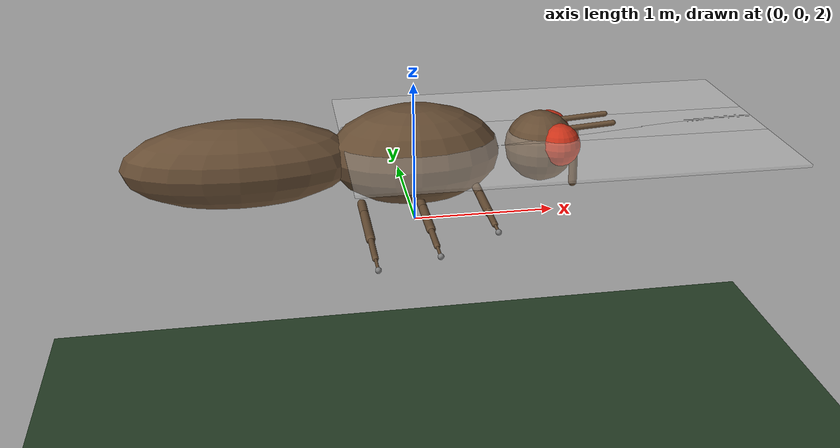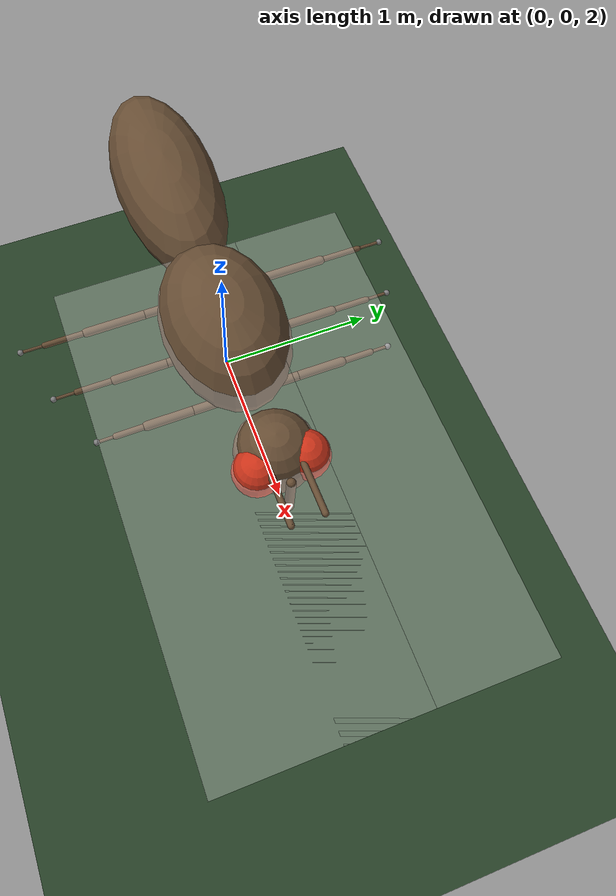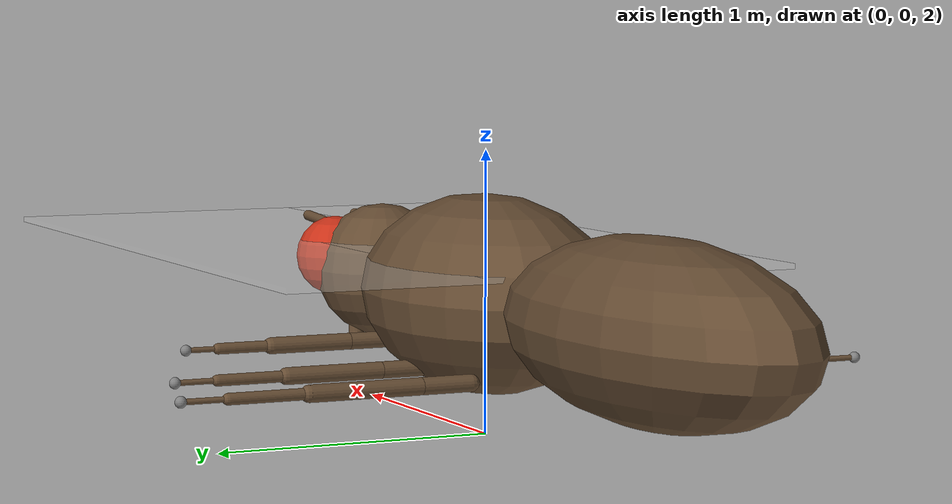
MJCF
<mujoco model="drosophila_melanogaster">
  <compiler angle="radian" autolimits="true"/>

  <!-- Simulation options -->
  <option timestep="0.001" gravity="0 0 -9.81" integrator="RK4">
    <flag contact="enable" warmstart="enable"/>
  </option>

  <!-- Default values -->
  <default>
    <joint armature="0.001" damping="0.1" limited="true"/>
    <geom contype="1" conaffinity="1" friction="0.8 0.02 0.01" solimp="0.9 0.95 0.001"/>
    <motor ctrllimited="true"/>
  </default>

  <!-- Assets for visualization -->
  <asset>
    <texture name="grid" type="2d" builtin="checker" rgb1="0.2 0.3 0.2" rgb2="0.1 0.2 0.1" width="512" height="512"/>
    <material name="grid_mat" texture="grid" texrepeat="8 8" reflectance="0.1"/>
    <material name="exo_mat" rgba="0.4 0.3 0.2 1"/>
    <material name="wing_mat" rgba="0.9 0.9 0.9 0.3"/>
    <material name="eye_mat" rgba="0.8 0.2 0.1 1"/>
  </asset>

  <worldbody>
    <!-- Ground plane -->
    <geom name="floor" type="plane" size="10 10 0.1" material="grid_mat"/>

    <!-- Drosophila body (scaled 1000x) -->
    <body name="thorax" pos="0 0 2.5">
      <!-- Free joint for 6-DOF body motion -->
      <freejoint name="root"/>

      <!-- Thorax: main body mass ~0.5kg scaled -->
      <inertial pos="0 0 0" mass="0.5" diaginertia="0.001 0.002 0.0015"/>
      <geom name="thorax" type="ellipsoid" size="0.6 0.4 0.35" material="exo_mat"/>

      <!-- ========== HEAD ========== -->
      <body name="head" pos="0.9 0 0">
        <joint name="neck_pitch" type="hinge" axis="0 1 0" range="-0.5 0.5"/>
        <inertial pos="0 0 0" mass="0.05" diaginertia="0.0002 0.0002 0.00015"/>
        <geom name="head" type="sphere" size="0.25" material="exo_mat"/>

        <!-- Compound eyes -->
        <geom name="left_eye" type="sphere" size="0.15" pos="0.1 0.15 0.05" material="eye_mat"/>
        <geom name="right_eye" type="sphere" size="0.15" pos="0.1 -0.15 0.05" material="eye_mat"/>

        <!-- Antennae -->
        <body name="left_antenna" pos="0.2 0.1 0.15">
          <joint name="antenna_L_yaw" type="hinge" axis="0 0 1" range="-1.0 1.0"/>
          <inertial pos="0 0 0.15" mass="0.001" diaginertia="1e-8 1e-8 1e-8"/>
          <geom name="antenna_L" type="capsule" size="0.02 0.3" euler="0 1.5 0" material="exo_mat"/>
        </body>
        <body name="right_antenna" pos="0.2 -0.1 0.15">
          <joint name="antenna_R_yaw" type="hinge" axis="0 0 1" range="-1.0 1.0"/>
          <inertial pos="0 0 0.15" mass="0.001" diaginertia="1e-8 1e-8 1e-8"/>
          <geom name="antenna_R" type="capsule" size="0.02 0.3" euler="0 1.5 0" material="exo_mat"/>
        </body>

        <!-- Proboscis -->
        <body name="proboscis" pos="0.25 0 -0.1">
          <joint name="proboscis_extend" type="slide" axis="1 0 0" range="0 0.5"/>
          <inertial pos="0.1 0 0" mass="0.001" diaginertia="1e-8 1e-8 1e-8"/>
          <geom name="proboscis" type="capsule" size="0.03 0.2" material="exo_mat"/>
        </body>
      </body>

      <!-- ========== WINGS ========== -->
      <body name="left_wing" pos="0 0.35 0.1">
        <joint name="wing_L" type="hinge" axis="0 0.03 1" range="-2.5 2.5" damping="0.01"/>
        <inertial pos="1.0 0 0" mass="0.01" diaginertia="0.001 1e-6 0.001"/>
        <geom name="wing_L" type="box" size="1.5 0.6 0.01" pos="1.0 0 0" material="wing_mat"/>
      </body>
      <body name="right_wing" pos="0 -0.35 0.1">
        <joint name="wing_R" type="hinge" axis="0 -0.03 1" range="-2.5 2.5" damping="0.01"/>
        <inertial pos="1.0 0 0" mass="0.01" diaginertia="0.001 1e-6 0.001"/>
        <geom name="wing_R" type="box" size="1.5 0.6 0.01" pos="1.0 0 0" material="wing_mat"/>
      </body>

      <!-- ========== LEGS ========== -->
      <!-- LEFT FRONT LEG (L1) -->
      <body name="leg_L1_coxa" pos="0.4 0.2 -0.2">
        <joint name="C1_L_yaw" type="hinge" axis="0 0 1" range="-1.2 1.2"/>
        <joint name="C1_L_pitch" type="hinge" axis="0 1 0" range="-0.5 1.0"/>
        <inertial pos="0 0.1 0" mass="0.01" diaginertia="1e-6 1e-6 1e-6"/>
        <geom name="C1_L" type="capsule" size="0.03 0.08" fromto="0 0 0 0 0.15 0" material="exo_mat"/>

        <body name="leg_L1_femur" pos="0 0.15 0">
          <joint name="F1_L_pitch" type="hinge" axis="0 1 0" range="-0.3 2.0"/>
          <inertial pos="0 0.15 0" mass="0.015" diaginertia="4e-6 1e-7 4e-6"/>
          <geom name="F1_L" type="capsule" size="0.03 0.18" fromto="0 0 0 0 0.3 0" material="exo_mat"/>

          <body name="leg_L1_tibia" pos="0 0.3 0">
            <joint name="T1_L_pitch" type="hinge" axis="0 1 0" range="-2.0 0.3"/>
            <inertial pos="0 0.1 0" mass="0.01" diaginertia="2e-6 1e-7 2e-6"/>
            <geom name="T1_L" type="capsule" size="0.02 0.15" fromto="0 0 0 0 0.2 0" material="exo_mat"/>

            <body name="leg_L1_tarsus" pos="0 0.2 0">
              <joint name="Ta1_L_pitch" type="hinge" axis="0 1 0" range="-0.5 1.0"/>
              <inertial pos="0 0.06 0" mass="0.005" diaginertia="1e-6 1e-7 1e-6"/>
              <geom name="Ta1_L" type="capsule" size="0.01 0.1" fromto="0 0 0 0 0.12 0" material="exo_mat"/>
              <site name="touch_L1_site" pos="0 0.12 0" size="0.02"/>
            </body>
          </body>
        </body>
      </body>

      <!-- LEFT MIDDLE LEG (L2) -->
      <body name="leg_L2_coxa" pos="0 0.25 -0.25">
        <joint name="C2_L_yaw" type="hinge" axis="0 0 1" range="-1.2 1.2"/>
        <joint name="C2_L_pitch" type="hinge" axis="0 1 0" range="-0.5 1.0"/>
        <inertial pos="0 0.1 0" mass="0.01" diaginertia="1e-6 1e-6 1e-6"/>
        <geom name="C2_L" type="capsule" size="0.03 0.08" fromto="0 0 0 0 0.15 0" material="exo_mat"/>

        <body name="leg_L2_femur" pos="0 0.15 0">
          <joint name="F2_L_pitch" type="hinge" axis="0 1 0" range="-0.3 2.0"/>
          <inertial pos="0 0.18 0" mass="0.018" diaginertia="5e-6 1e-7 5e-6"/>
          <geom name="F2_L" type="capsule" size="0.03 0.22" fromto="0 0 0 0 0.35 0" material="exo_mat"/>

          <body name="leg_L2_tibia" pos="0 0.35 0">
            <joint name="T2_L_pitch" type="hinge" axis="0 1 0" range="-2.0 0.3"/>
            <inertial pos="0 0.12 0" mass="0.012" diaginertia="3e-6 1e-7 3e-6"/>
            <geom name="T2_L" type="capsule" size="0.02 0.18" fromto="0 0 0 0 0.25 0" material="exo_mat"/>

            <body name="leg_L2_tarsus" pos="0 0.25 0">
              <joint name="Ta2_L_pitch" type="hinge" axis="0 1 0" range="-0.5 1.0"/>
              <inertial pos="0 0.075 0" mass="0.006" diaginertia="1e-6 1e-7 1e-6"/>
              <geom name="Ta2_L" type="capsule" size="0.01 0.12" fromto="0 0 0 0 0.15 0" material="exo_mat"/>
              <site name="touch_L2_site" pos="0 0.15 0" size="0.02"/>
            </body>
          </body>
        </body>
      </body>

      <!-- LEFT HIND LEG (L3) -->
      <body name="leg_L3_coxa" pos="-0.4 0.25 -0.25">
        <joint name="C3_L_yaw" type="hinge" axis="0 0 1" range="-1.2 1.2"/>
        <joint name="C3_L_pitch" type="hinge" axis="0 1 0" range="-0.5 1.0"/>
        <inertial pos="0 0.1 0" mass="0.012" diaginertia="1e-6 1e-6 1e-6"/>
        <geom name="C3_L" type="capsule" size="0.03 0.1" fromto="0 0 0 0 0.18 0" material="exo_mat"/>

        <body name="leg_L3_femur" pos="0 0.18 0">
          <joint name="F3_L_pitch" type="hinge" axis="0 1 0" range="-0.3 2.0"/>
          <inertial pos="0 0.2 0" mass="0.02" diaginertia="6e-6 1e-7 6e-6"/>
          <geom name="F3_L" type="capsule" size="0.03 0.25" fromto="0 0 0 0 0.4 0" material="exo_mat"/>

          <body name="leg_L3_tibia" pos="0 0.4 0">
            <joint name="T3_L_pitch" type="hinge" axis="0 1 0" range="-2.0 0.3"/>
            <inertial pos="0 0.14 0" mass="0.014" diaginertia="4e-6 1e-7 4e-6"/>
            <geom name="T3_L" type="capsule" size="0.02 0.2" fromto="0 0 0 0 0.28 0" material="exo_mat"/>

            <body name="leg_L3_tarsus" pos="0 0.28 0">
              <joint name="Ta3_L_pitch" type="hinge" axis="0 1 0" range="-0.5 1.0"/>
              <inertial pos="0 0.08 0" mass="0.007" diaginertia="2e-6 1e-7 2e-6"/>
              <geom name="Ta3_L" type="capsule" size="0.01 0.14" fromto="0 0 0 0 0.16 0" material="exo_mat"/>
              <site name="touch_L3_site" pos="0 0.16 0" size="0.02"/>
            </body>
          </body>
        </body>
      </body>

      <!-- RIGHT FRONT LEG (R1) -->
      <body name="leg_R1_coxa" pos="0.4 -0.2 -0.2">
        <joint name="C1_R_yaw" type="hinge" axis="0 0 1" range="-1.2 1.2"/>
        <joint name="C1_R_pitch" type="hinge" axis="0 1 0" range="-0.5 1.0"/>
        <inertial pos="0 -0.1 0" mass="0.01" diaginertia="1e-6 1e-6 1e-6"/>
        <geom name="C1_R" type="capsule" size="0.03 0.08" fromto="0 0 0 0 -0.15 0" material="exo_mat"/>

        <body name="leg_R1_femur" pos="0 -0.15 0">
          <joint name="F1_R_pitch" type="hinge" axis="0 1 0" range="-0.3 2.0"/>
          <inertial pos="0 -0.15 0" mass="0.015" diaginertia="4e-6 1e-7 4e-6"/>
          <geom name="F1_R" type="capsule" size="0.03 0.18" fromto="0 0 0 0 -0.3 0" material="exo_mat"/>

          <body name="leg_R1_tibia" pos="0 -0.3 0">
            <joint name="T1_R_pitch" type="hinge" axis="0 1 0" range="-2.0 0.3"/>
            <inertial pos="0 -0.1 0" mass="0.01" diaginertia="2e-6 1e-7 2e-6"/>
            <geom name="T1_R" type="capsule" size="0.02 0.15" fromto="0 0 0 0 -0.2 0" material="exo_mat"/>

            <body name="leg_R1_tarsus" pos="0 -0.2 0">
              <joint name="Ta1_R_pitch" type="hinge" axis="0 1 0" range="-0.5 1.0"/>
              <inertial pos="0 -0.06 0" mass="0.005" diaginertia="1e-6 1e-7 1e-6"/>
              <geom name="Ta1_R" type="capsule" size="0.01 0.1" fromto="0 0 0 0 -0.12 0" material="exo_mat"/>
              <site name="touch_R1_site" pos="0 -0.12 0" size="0.02"/>
            </body>
          </body>
        </body>
      </body>

      <!-- RIGHT MIDDLE LEG (R2) -->
      <body name="leg_R2_coxa" pos="0 -0.25 -0.25">
        <joint name="C2_R_yaw" type="hinge" axis="0 0 1" range="-1.2 1.2"/>
        <joint name="C2_R_pitch" type="hinge" axis="0 1 0" range="-0.5 1.0"/>
        <inertial pos="0 -0.1 0" mass="0.01" diaginertia="1e-6 1e-6 1e-6"/>
        <geom name="C2_R" type="capsule" size="0.03 0.08" fromto="0 0 0 0 -0.15 0" material="exo_mat"/>

        <body name="leg_R2_femur" pos="0 -0.15 0">
          <joint name="F2_R_pitch" type="hinge" axis="0 1 0" range="-0.3 2.0"/>
          <inertial pos="0 -0.18 0" mass="0.018" diaginertia="5e-6 1e-7 5e-6"/>
          <geom name="F2_R" type="capsule" size="0.03 0.22" fromto="0 0 0 0 -0.35 0" material="exo_mat"/>

          <body name="leg_R2_tibia" pos="0 -0.35 0">
            <joint name="T2_R_pitch" type="hinge" axis="0 1 0" range="-2.0 0.3"/>
            <inertial pos="0 -0.12 0" mass="0.012" diaginertia="3e-6 1e-7 3e-6"/>
            <geom name="T2_R" type="capsule" size="0.02 0.18" fromto="0 0 0 0 -0.25 0" material="exo_mat"/>

            <body name="leg_R2_tarsus" pos="0 -0.25 0">
              <joint name="Ta2_R_pitch" type="hinge" axis="0 1 0" range="-0.5 1.0"/>
              <inertial pos="0 -0.075 0" mass="0.006" diaginertia="1e-6 1e-7 1e-6"/>
              <geom name="Ta2_R" type="capsule" size="0.01 0.12" fromto="0 0 0 0 -0.15 0" material="exo_mat"/>
              <site name="touch_R2_site" pos="0 -0.15 0" size="0.02"/>
            </body>
          </body>
        </body>
      </body>

      <!-- RIGHT HIND LEG (R3) -->
      <body name="leg_R3_coxa" pos="-0.4 -0.25 -0.25">
        <joint name="C3_R_yaw" type="hinge" axis="0 0 1" range="-1.2 1.2"/>
        <joint name="C3_R_pitch" type="hinge" axis="0 1 0" range="-0.5 1.0"/>
        <inertial pos="0 -0.1 0" mass="0.012" diaginertia="1e-6 1e-6 1e-6"/>
        <geom name="C3_R" type="capsule" size="0.03 0.1" fromto="0 0 0 0 -0.18 0" material="exo_mat"/>

        <body name="leg_R3_femur" pos="0 -0.18 0">
          <joint name="F3_R_pitch" type="hinge" axis="0 1 0" range="-0.3 2.0"/>
          <inertial pos="0 -0.2 0" mass="0.02" diaginertia="6e-6 1e-7 6e-6"/>
          <geom name="F3_R" type="capsule" size="0.03 0.25" fromto="0 0 0 0 -0.4 0" material="exo_mat"/>

          <body name="leg_R3_tibia" pos="0 -0.4 0">
            <joint name="T3_R_pitch" type="hinge" axis="0 1 0" range="-2.0 0.3"/>
            <inertial pos="0 -0.14 0" mass="0.014" diaginertia="4e-6 1e-7 4e-6"/>
            <geom name="T3_R" type="capsule" size="0.02 0.2" fromto="0 0 0 0 -0.28 0" material="exo_mat"/>

            <body name="leg_R3_tarsus" pos="0 -0.28 0">
              <joint name="Ta3_R_pitch" type="hinge" axis="0 1 0" range="-0.5 1.0"/>
              <inertial pos="0 -0.08 0" mass="0.007" diaginertia="2e-6 1e-7 2e-6"/>
              <geom name="Ta3_R" type="capsule" size="0.01 0.14" fromto="0 0 0 0 -0.16 0" material="exo_mat"/>
              <site name="touch_R3_site" pos="0 -0.16 0" size="0.02"/>
            </body>
          </body>
        </body>
      </body>

      <!-- ========== ABDOMEN ========== -->
      <body name="abdomen" pos="-0.8 0 0">
        <joint name="abdomen_pitch" type="hinge" axis="0 1 0" range="-0.3 0.3"/>
        <inertial pos="-0.4 0 0" mass="0.3" diaginertia="0.0008 0.0005 0.0006"/>
        <geom name="abdomen" type="ellipsoid" size="0.8 0.35 0.3" pos="-0.4 0 0" material="exo_mat"/>
      </body>
    </body>
  </worldbody>

  <!-- ========== ACTUATORS ========== -->
  <actuator>
    <!-- Wing motors -->
    <motor name="wing_L_motor" joint="wing_L" ctrllimited="true" ctrlrange="-1 1" gear="0.1"/>
    <motor name="wing_R_motor" joint="wing_R" ctrllimited="true" ctrlrange="-1 1" gear="0.1"/>

    <!-- Left front leg (L1) -->
    <motor name="C1_L_motor" joint="C1_L_pitch" ctrllimited="true" ctrlrange="-1 1" gear="0.05"/>
    <motor name="F1_L_motor" joint="F1_L_pitch" ctrllimited="true" ctrlrange="-1 1" gear="0.05"/>
    <motor name="T1_L_motor" joint="T1_L_pitch" ctrllimited="true" ctrlrange="-1 1" gear="0.03"/>
    <motor name="Ta1_L_motor" joint="Ta1_L_pitch" ctrllimited="true" ctrlrange="-1 1" gear="0.02"/>

    <!-- Left middle leg (L2) -->
    <motor name="C2_L_motor" joint="C2_L_pitch" ctrllimited="true" ctrlrange="-1 1" gear="0.05"/>
    <motor name="F2_L_motor" joint="F2_L_pitch" ctrllimited="true" ctrlrange="-1 1" gear="0.05"/>
    <motor name="T2_L_motor" joint="T2_L_pitch" ctrllimited="true" ctrlrange="-1 1" gear="0.03"/>
    <motor name="Ta2_L_motor" joint="Ta2_L_pitch" ctrllimited="true" ctrlrange="-1 1" gear="0.02"/>

    <!-- Left hind leg (L3) -->
    <motor name="C3_L_motor" joint="C3_L_pitch" ctrllimited="true" ctrlrange="-1 1" gear="0.05"/>
    <motor name="F3_L_motor" joint="F3_L_pitch" ctrllimited="true" ctrlrange="-1 1" gear="0.05"/>
    <motor name="T3_L_motor" joint="T3_L_pitch" ctrllimited="true" ctrlrange="-1 1" gear="0.03"/>
    <motor name="Ta3_L_motor" joint="Ta3_L_pitch" ctrllimited="true" ctrlrange="-1 1" gear="0.02"/>

    <!-- Right front leg (R1) -->
    <motor name="C1_R_motor" joint="C1_R_pitch" ctrllimited="true" ctrlrange="-1 1" gear="0.05"/>
    <motor name="F1_R_motor" joint="F1_R_pitch" ctrllimited="true" ctrlrange="-1 1" gear="0.05"/>
    <motor name="T1_R_motor" joint="T1_R_pitch" ctrllimited="true" ctrlrange="-1 1" gear="0.03"/>
    <motor name="Ta1_R_motor" joint="Ta1_R_pitch" ctrllimited="true" ctrlrange="-1 1" gear="0.02"/>

    <!-- Right middle leg (R2) -->
    <motor name="C2_R_motor" joint="C2_R_pitch" ctrllimited="true" ctrlrange="-1 1" gear="0.05"/>
    <motor name="F2_R_motor" joint="F2_R_pitch" ctrllimited="true" ctrlrange="-1 1" gear="0.05"/>
    <motor name="T2_R_motor" joint="T2_R_pitch" ctrllimited="true" ctrlrange="-1 1" gear="0.03"/>
    <motor name="Ta2_R_motor" joint="Ta2_R_pitch" ctrllimited="true" ctrlrange="-1 1" gear="0.02"/>

    <!-- Right hind leg (R3) -->
    <motor name="C3_R_motor" joint="C3_R_pitch" ctrllimited="true" ctrlrange="-1 1" gear="0.05"/>
    <motor name="F3_R_motor" joint="F3_R_pitch" ctrllimited="true" ctrlrange="-1 1" gear="0.05"/>
    <motor name="T3_R_motor" joint="T3_R_pitch" ctrllimited="true" ctrlrange="-1 1" gear="0.03"/>
    <motor name="Ta3_R_motor" joint="Ta3_R_pitch" ctrllimited="true" ctrlrange="-1 1" gear="0.02"/>
  </actuator>

  <!-- ========== SENSORS ========== -->
  <sensor>
    <!-- Body position/velocity -->
    <framepos name="thorax_pos" objtype="body" objname="thorax"/>
    <framequat name="thorax_quat" objtype="body" objname="thorax"/>
    <framelinvel name="thorax_vel" objtype="body" objname="thorax"/>
    <frameangvel name="thorax_angvel" objtype="body" objname="thorax"/>

    <!-- Wing joint positions -->
    <jointpos name="wing_L_pos" joint="wing_L"/>
    <jointpos name="wing_R_pos" joint="wing_R"/>

    <!-- Leg joint positions (all legs) -->
    <jointpos name="C1_L_pos" joint="C1_L_pitch"/>
    <jointpos name="F1_L_pos" joint="F1_L_pitch"/>
    <jointpos name="T1_L_pos" joint="T1_L_pitch"/>
    <jointpos name="C2_L_pos" joint="C2_L_pitch"/>
    <jointpos name="F2_L_pos" joint="F2_L_pitch"/>
    <jointpos name="T2_L_pos" joint="T2_L_pitch"/>
    <jointpos name="C3_L_pos" joint="C3_L_pitch"/>
    <jointpos name="F3_L_pos" joint="F3_L_pitch"/>
    <jointpos name="T3_L_pos" joint="T3_L_pitch"/>

    <jointpos name="C1_R_pos" joint="C1_R_pitch"/>
    <jointpos name="F1_R_pos" joint="F1_R_pitch"/>
    <jointpos name="T1_R_pos" joint="T1_R_pitch"/>
    <jointpos name="C2_R_pos" joint="C2_R_pitch"/>
    <jointpos name="F2_R_pos" joint="F2_R_pitch"/>
    <jointpos name="T2_R_pos" joint="T2_R_pitch"/>
    <jointpos name="C3_R_pos" joint="C3_R_pitch"/>
    <jointpos name="F3_R_pos" joint="F3_R_pitch"/>
    <jointpos name="T3_R_pos" joint="T3_R_pitch"/>

    <!-- Tarsus joint positions -->
    <jointpos name="Ta1_L_pos" joint="Ta1_L_pitch"/>
    <jointpos name="Ta2_L_pos" joint="Ta2_L_pitch"/>
    <jointpos name="Ta3_L_pos" joint="Ta3_L_pitch"/>
    <jointpos name="Ta1_R_pos" joint="Ta1_R_pitch"/>
    <jointpos name="Ta2_R_pos" joint="Ta2_R_pitch"/>
    <jointpos name="Ta3_R_pos" joint="Ta3_R_pitch"/>

    <!-- Touch sensors on tarsi -->
    <touch name="touch_L1" site="touch_L1_site"/>
    <touch name="touch_L2" site="touch_L2_site"/>
    <touch name="touch_L3" site="touch_L3_site"/>
    <touch name="touch_R1" site="touch_R1_site"/>
    <touch name="touch_R2" site="touch_R2_site"/>
    <touch name="touch_R3" site="touch_R3_site"/>
  </sensor>
</mujoco>
